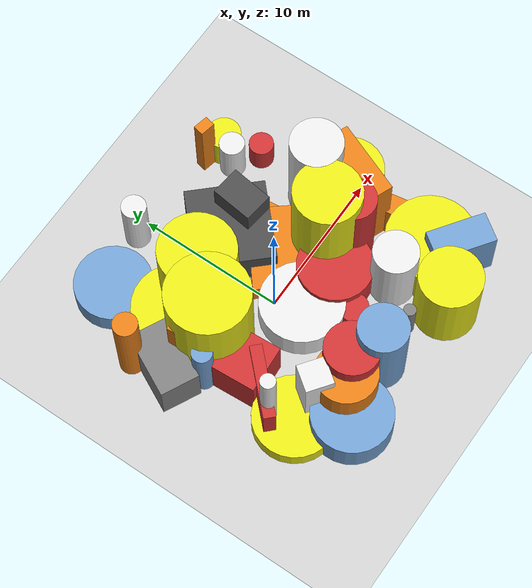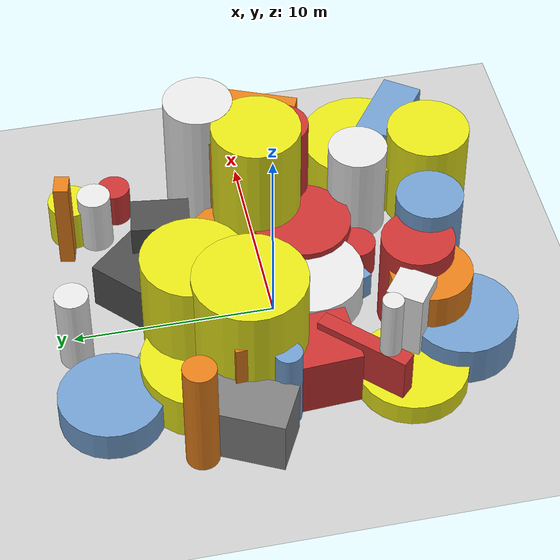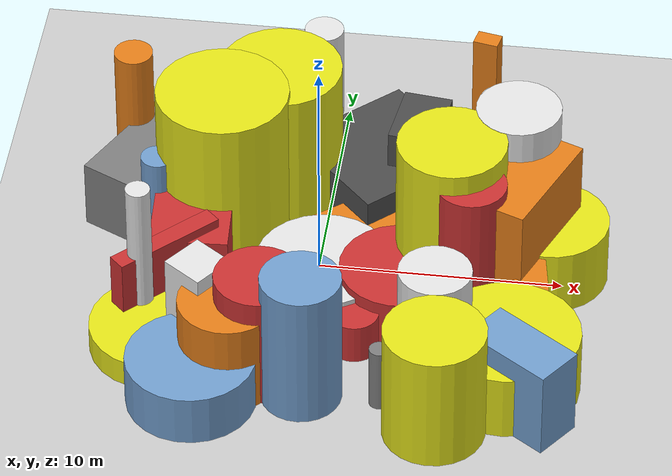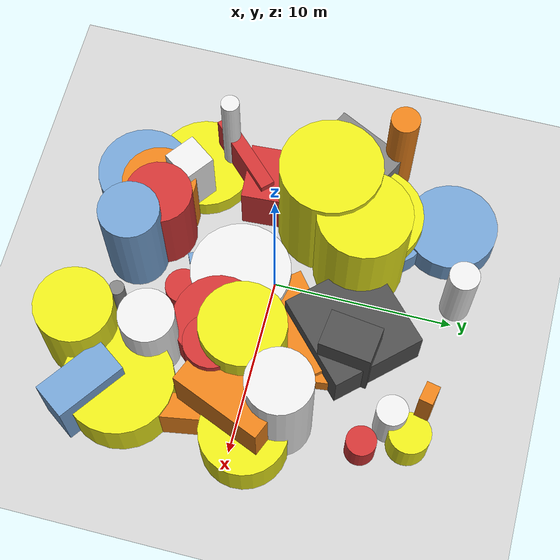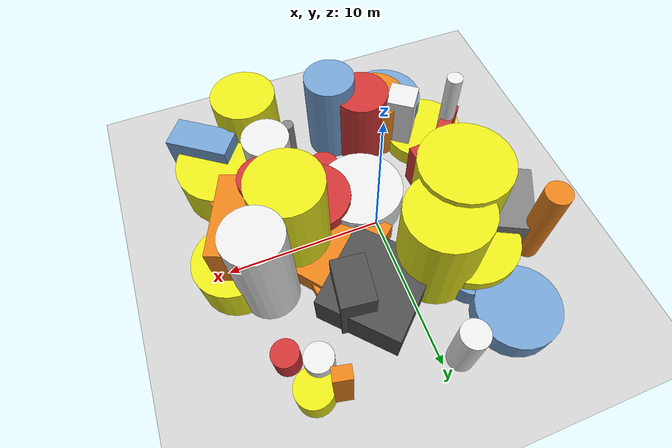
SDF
<?xml version='1.0'?>
<sdf version='1.6'>
  <world name='default'>
    <!-- Sun light -->
    <light name='sun' type='directional'>
      <cast_shadows>1</cast_shadows>
      <pose>0 0 10 0 0 0</pose>
      <diffuse>0.8 0.8 0.8 1</diffuse>
      <specular>0.2 0.2 0.2 1</specular>
      <attenuation>
        <range>1000</range>
        <constant>0.9</constant>
        <linear>0.01</linear>
        <quadratic>0.001</quadratic>
      </attenuation>
      <direction>-0.5 0.1 -0.9</direction>
    </light>

    <!-- Ground plane -->
    <model name='ground_plane'>
      <static>1</static>
      <link name='link'>
        <collision name='collision'>
          <geometry>
            <plane>
              <normal>0 0 1</normal>
              <size>100 100</size>
            </plane>
          </geometry>
          <surface>
            <contact>
              <collide_bitmask>65535</collide_bitmask>
              <ode/>
            </contact>
            <friction>
              <ode>
                <mu>100</mu>
                <mu2>50</mu2>
              </ode>
              <torsional><ode/></torsional>
            </friction>
            <bounce/>
          </surface>
          <max_contacts>10</max_contacts>
        </collision>
        <visual name='visual'>
          <cast_shadows>0</cast_shadows>
          <geometry>
            <plane>
              <normal>0 0 1</normal>
              <size>100 100</size>
            </plane>
          </geometry>
          <material>
            <script>
              <uri>file://media/materials/scripts/gazebo.material</uri>
              <n>Gazebo/Grey</n>
            </script>
          </material>
        </visual>
      </link>
    </model>

    <!-- Environment -->
    <magnetic_field>6e-06 2.3e-05 -4.2e-05</magnetic_field>
    <atmosphere type='adiabatic'/>
    <physics name='default_physics' default='0' type='ode'>
      <gravity>0 0 -9.8</gravity>
      <max_step_size>0.004</max_step_size>
      <real_time_factor>1</real_time_factor>
      <real_time_update_rate>250</real_time_update_rate>
    </physics>
    <scene>
      <ambient>0.4 0.4 0.4 1</ambient>
      <background>0.7 0.7 0.7 1</background>
      <shadows>1</shadows>
    </scene>
    <wind/>
    <spherical_coordinates>
      <surface_model>EARTH_WGS84</surface_model>
      <latitude_deg>0</latitude_deg>
      <longitude_deg>0</longitude_deg>
      <elevation>0</elevation>
      <heading_deg>0</heading_deg>
    </spherical_coordinates>

    <!-- ============ OBSTACLES (45) ============ -->
    <model name='obs_00'>
      <static>1</static>
      <link name='link'>
        <visual name='visual'>
          <geometry>
            <cylinder>
              <radius>0.8256</radius>
              <length>4.4278</length>
            </cylinder>
          </geometry>
          <material>
            <script>
              <n>Gazebo/White</n>
              <uri>file://media/materials/scripts/gazebo.material</uri>
            </script>
            <ambient>0.9 0.9 0.9 1</ambient>
          </material>
        </visual>
        <collision name='collision'>
          <geometry>
            <cylinder>
              <radius>0.8256</radius>
              <length>4.4278</length>
            </cylinder>
          </geometry>
          <max_contacts>10</max_contacts>
          <surface>
            <contact><ode/></contact>
            <bounce/>
            <friction>
              <ode><mu>1</mu><mu2>1</mu2></ode>
              <torsional><ode/></torsional>
            </friction>
          </surface>
        </collision>
      </link>
      <pose>-1.1108 9.9749 2.2139 0 0 0.9129</pose>
    </model>

    <model name='obs_01'>
      <static>1</static>
      <link name='link'>
        <visual name='visual'>
          <geometry>
            <cylinder>
              <radius>2.9618</radius>
              <length>2.9205</length>
            </cylinder>
          </geometry>
          <material>
            <script>
              <n>Gazebo/Yellow</n>
              <uri>file://media/materials/scripts/gazebo.material</uri>
            </script>
            <ambient>0.9 0.9 0.1 1</ambient>
          </material>
        </visual>
        <collision name='collision'>
          <geometry>
            <cylinder>
              <radius>2.9618</radius>
              <length>2.9205</length>
            </cylinder>
          </geometry>
          <max_contacts>10</max_contacts>
          <surface>
            <contact><ode/></contact>
            <bounce/>
            <friction>
              <ode><mu>1</mu><mu2>1</mu2></ode>
              <torsional><ode/></torsional>
            </friction>
          </surface>
        </collision>
      </link>
      <pose>8.3626 -6.2777 1.4602 0 0 0.5728</pose>
    </model>

    <model name='obs_02'>
      <static>1</static>
      <link name='link'>
        <visual name='visual'>
          <geometry>
            <box>
              <size>4.9049 3.2110 3.1605</size>
            </box>
          </geometry>
          <material>
            <script>
              <n>Gazebo/Red</n>
              <uri>file://media/materials/scripts/gazebo.material</uri>
            </script>
            <ambient>0.8 0.2 0.2 1</ambient>
          </material>
        </visual>
        <collision name='collision'>
          <geometry>
            <box>
              <size>4.9049 3.2110 3.1605</size>
            </box>
          </geometry>
          <max_contacts>10</max_contacts>
          <surface>
            <contact><ode/></contact>
            <bounce/>
            <friction>
              <ode><mu>1</mu><mu2>1</mu2></ode>
              <torsional><ode/></torsional>
            </friction>
          </surface>
        </collision>
      </link>
      <pose>-5.1143 -0.4385 1.5802 0 0 1.6311</pose>
    </model>

    <model name='obs_03'>
      <static>1</static>
      <link name='link'>
        <visual name='visual'>
          <geometry>
            <box>
              <size>0.7392 1.0438 5.0049</size>
            </box>
          </geometry>
          <material>
            <script>
              <n>Gazebo/Orange</n>
              <uri>file://media/materials/scripts/gazebo.material</uri>
            </script>
            <ambient>0.9 0.5 0.1 1</ambient>
          </material>
        </visual>
        <collision name='collision'>
          <geometry>
            <box>
              <size>0.7392 1.0438 5.0049</size>
            </box>
          </geometry>
          <max_contacts>10</max_contacts>
          <surface>
            <contact><ode/></contact>
            <bounce/>
            <friction>
              <ode><mu>1</mu><mu2>1</mu2></ode>
              <torsional><ode/></torsional>
            </friction>
          </surface>
        </collision>
      </link>
      <pose>5.8440 9.4691 2.5024 0 0 1.3626</pose>
    </model>

    <model name='obs_04'>
      <static>1</static>
      <link name='link'>
        <visual name='visual'>
          <geometry>
            <cylinder>
              <radius>1.7459</radius>
              <length>7.4081</length>
            </cylinder>
          </geometry>
          <material>
            <script>
              <n>Gazebo/White</n>
              <uri>file://media/materials/scripts/gazebo.material</uri>
            </script>
            <ambient>0.9 0.9 0.9 1</ambient>
          </material>
        </visual>
        <collision name='collision'>
          <geometry>
            <cylinder>
              <radius>1.7459</radius>
              <length>7.4081</length>
            </cylinder>
          </geometry>
          <max_contacts>10</max_contacts>
          <surface>
            <contact><ode/></contact>
            <bounce/>
            <friction>
              <ode><mu>1</mu><mu2>1</mu2></ode>
              <torsional><ode/></torsional>
            </friction>
          </surface>
        </collision>
      </link>
      <pose>7.8511 2.2119 3.7041 0 0 2.7974</pose>
    </model>

    <model name='obs_05'>
      <static>1</static>
      <link name='link'>
        <visual name='visual'>
          <geometry>
            <box>
              <size>4.0283 2.0386 3.9097</size>
            </box>
          </geometry>
          <material>
            <script>
              <n>Gazebo/Blue</n>
              <uri>file://media/materials/scripts/gazebo.material</uri>
            </script>
            <ambient>0.447 0.624 0.812 1</ambient>
          </material>
        </visual>
        <collision name='collision'>
          <geometry>
            <box>
              <size>4.0283 2.0386 3.9097</size>
            </box>
          </geometry>
          <max_contacts>10</max_contacts>
          <surface>
            <contact><ode/></contact>
            <bounce/>
            <friction>
              <ode><mu>1</mu><mu2>1</mu2></ode>
              <torsional><ode/></torsional>
            </friction>
          </surface>
        </collision>
      </link>
      <pose>9.0684 -7.9928 1.9549 0 0 2.5215</pose>
    </model>

    <model name='obs_06'>
      <static>1</static>
      <link name='link'>
        <visual name='visual'>
          <geometry>
            <cylinder>
              <radius>2.7219</radius>
              <length>1.1760</length>
            </cylinder>
          </geometry>
          <material>
            <script>
              <n>Gazebo/Yellow</n>
              <uri>file://media/materials/scripts/gazebo.material</uri>
            </script>
            <ambient>0.9 0.9 0.1 1</ambient>
          </material>
        </visual>
        <collision name='collision'>
          <geometry>
            <cylinder>
              <radius>2.7219</radius>
              <length>1.1760</length>
            </cylinder>
          </geometry>
          <max_contacts>10</max_contacts>
          <surface>
            <contact><ode/></contact>
            <bounce/>
            <friction>
              <ode><mu>1</mu><mu2>1</mu2></ode>
              <torsional><ode/></torsional>
            </friction>
          </surface>
        </collision>
      </link>
      <pose>-5.8803 -5.5879 0.5880 0 0 1.8410</pose>
    </model>

    <model name='obs_07'>
      <static>1</static>
      <link name='link'>
        <visual name='visual'>
          <geometry>
            <box>
              <size>1.3466 5.9663 2.7808</size>
            </box>
          </geometry>
          <material>
            <script>
              <n>Gazebo/Orange</n>
              <uri>file://media/materials/scripts/gazebo.material</uri>
            </script>
            <ambient>0.9 0.5 0.1 1</ambient>
          </material>
        </visual>
        <collision name='collision'>
          <geometry>
            <box>
              <size>1.3466 5.9663 2.7808</size>
            </box>
          </geometry>
          <max_contacts>10</max_contacts>
          <surface>
            <contact><ode/></contact>
            <bounce/>
            <friction>
              <ode><mu>1</mu><mu2>1</mu2></ode>
              <torsional><ode/></torsional>
            </friction>
          </surface>
        </collision>
      </link>
      <pose>8.8363 -2.2055 1.3904 0 0 0.1645</pose>
    </model>

    <model name='obs_08'>
      <static>1</static>
      <link name='link'>
        <visual name='visual'>
          <geometry>
            <box>
              <size>1.8422 1.8539 4.8434</size>
            </box>
          </geometry>
          <material>
            <script>
              <n>Gazebo/White</n>
              <uri>file://media/materials/scripts/gazebo.material</uri>
            </script>
            <ambient>0.9 0.9 0.9 1</ambient>
          </material>
        </visual>
        <collision name='collision'>
          <geometry>
            <box>
              <size>1.8422 1.8539 4.8434</size>
            </box>
          </geometry>
          <max_contacts>10</max_contacts>
          <surface>
            <contact><ode/></contact>
            <bounce/>
            <friction>
              <ode><mu>1</mu><mu2>1</mu2></ode>
              <torsional><ode/></torsional>
            </friction>
          </surface>
        </collision>
      </link>
      <pose>-4.0855 -5.8330 2.4217 0 0 0.9356</pose>
    </model>

    <model name='obs_09'>
      <static>1</static>
      <link name='link'>
        <visual name='visual'>
          <geometry>
            <box>
              <size>2.0320 1.4455 1.4614</size>
            </box>
          </geometry>
          <material>
            <script>
              <n>Gazebo/Blue</n>
              <uri>file://media/materials/scripts/gazebo.material</uri>
            </script>
            <ambient>0.447 0.624 0.812 1</ambient>
          </material>
        </visual>
        <collision name='collision'>
          <geometry>
            <box>
              <size>2.0320 1.4455 1.4614</size>
            </box>
          </geometry>
          <max_contacts>10</max_contacts>
          <surface>
            <contact><ode/></contact>
            <bounce/>
            <friction>
              <ode><mu>1</mu><mu2>1</mu2></ode>
              <torsional><ode/></torsional>
            </friction>
          </surface>
        </collision>
      </link>
      <pose>0.1535 -3.7407 0.7307 0 0 2.0418</pose>
    </model>

    <model name='obs_10'>
      <static>1</static>
      <link name='link'>
        <visual name='visual'>
          <geometry>
            <cylinder>
              <radius>2.5497</radius>
              <length>1.6457</length>
            </cylinder>
          </geometry>
          <material>
            <script>
              <n>Gazebo/Blue</n>
              <uri>file://media/materials/scripts/gazebo.material</uri>
            </script>
            <ambient>0.447 0.624 0.812 1</ambient>
          </material>
        </visual>
        <collision name='collision'>
          <geometry>
            <cylinder>
              <radius>2.5497</radius>
              <length>1.6457</length>
            </cylinder>
          </geometry>
          <max_contacts>10</max_contacts>
          <surface>
            <contact><ode/></contact>
            <bounce/>
            <friction>
              <ode><mu>1</mu><mu2>1</mu2></ode>
              <torsional><ode/></torsional>
            </friction>
          </surface>
        </collision>
      </link>
      <pose>-5.1561 8.8393 0.8228 0 0 0.2892</pose>
    </model>

    <model name='obs_11'>
      <static>1</static>
      <link name='link'>
        <visual name='visual'>
          <geometry>
            <box>
              <size>4.9857 3.0220 1.1138</size>
            </box>
          </geometry>
          <material>
            <script>
              <n>Gazebo/Orange</n>
              <uri>file://media/materials/scripts/gazebo.material</uri>
            </script>
            <ambient>0.9 0.5 0.1 1</ambient>
          </material>
        </visual>
        <collision name='collision'>
          <geometry>
            <box>
              <size>4.9857 3.0220 1.1138</size>
            </box>
          </geometry>
          <max_contacts>10</max_contacts>
          <surface>
            <contact><ode/></contact>
            <bounce/>
            <friction>
              <ode><mu>1</mu><mu2>1</mu2></ode>
              <torsional><ode/></torsional>
            </friction>
          </surface>
        </collision>
      </link>
      <pose>4.0776 2.0271 0.5569 0 0 1.6892</pose>
    </model>

    <model name='obs_12'>
      <static>1</static>
      <link name='link'>
        <visual name='visual'>
          <geometry>
            <cylinder>
              <radius>1.4547</radius>
              <length>6.4703</length>
            </cylinder>
          </geometry>
          <material>
            <script>
              <n>Gazebo/Red</n>
              <uri>file://media/materials/scripts/gazebo.material</uri>
            </script>
            <ambient>0.8 0.2 0.2 1</ambient>
          </material>
        </visual>
        <collision name='collision'>
          <geometry>
            <cylinder>
              <radius>1.4547</radius>
              <length>6.4703</length>
            </cylinder>
          </geometry>
          <max_contacts>10</max_contacts>
          <surface>
            <contact><ode/></contact>
            <bounce/>
            <friction>
              <ode><mu>1</mu><mu2>1</mu2></ode>
              <torsional><ode/></torsional>
            </friction>
          </surface>
        </collision>
      </link>
      <pose>6.3475 -1.6383 3.2352 0 0 1.9381</pose>
    </model>

    <model name='obs_13'>
      <static>1</static>
      <link name='link'>
        <visual name='visual'>
          <geometry>
            <cylinder>
              <radius>2.7794</radius>
              <length>1.9856</length>
            </cylinder>
          </geometry>
          <material>
            <script>
              <n>Gazebo/White</n>
              <uri>file://media/materials/scripts/gazebo.material</uri>
            </script>
            <ambient>0.9 0.9 0.9 1</ambient>
          </material>
        </visual>
        <collision name='collision'>
          <geometry>
            <cylinder>
              <radius>2.7794</radius>
              <length>1.9856</length>
            </cylinder>
          </geometry>
          <max_contacts>10</max_contacts>
          <surface>
            <contact><ode/></contact>
            <bounce/>
            <friction>
              <ode><mu>1</mu><mu2>1</mu2></ode>
              <torsional><ode/></torsional>
            </friction>
          </surface>
        </collision>
      </link>
      <pose>0.4158 -1.8308 0.9928 0 0 0.1625</pose>
    </model>

    <model name='obs_14'>
      <static>1</static>
      <link name='link'>
        <visual name='visual'>
          <geometry>
            <cylinder>
              <radius>0.8182</radius>
              <length>1.9469</length>
            </cylinder>
          </geometry>
          <material>
            <script>
              <n>Gazebo/Red</n>
              <uri>file://media/materials/scripts/gazebo.material</uri>
            </script>
            <ambient>0.8 0.2 0.2 1</ambient>
          </material>
        </visual>
        <collision name='collision'>
          <geometry>
            <cylinder>
              <radius>0.8182</radius>
              <length>1.9469</length>
            </cylinder>
          </geometry>
          <max_contacts>10</max_contacts>
          <surface>
            <contact><ode/></contact>
            <bounce/>
            <friction>
              <ode><mu>1</mu><mu2>1</mu2></ode>
              <torsional><ode/></torsional>
            </friction>
          </surface>
        </collision>
      </link>
      <pose>8.1848 6.6910 0.9735 0 0 0.4064</pose>
    </model>

    <model name='obs_15'>
      <static>1</static>
      <link name='link'>
        <visual name='visual'>
          <geometry>
            <cylinder>
              <radius>2.0815</radius>
              <length>5.2868</length>
            </cylinder>
          </geometry>
          <material>
            <script>
              <n>Gazebo/Yellow</n>
              <uri>file://media/materials/scripts/gazebo.material</uri>
            </script>
            <ambient>0.9 0.9 0.1 1</ambient>
          </material>
        </visual>
        <collision name='collision'>
          <geometry>
            <cylinder>
              <radius>2.0815</radius>
              <length>5.2868</length>
            </cylinder>
          </geometry>
          <max_contacts>10</max_contacts>
          <surface>
            <contact><ode/></contact>
            <bounce/>
            <friction>
              <ode><mu>1</mu><mu2>1</mu2></ode>
              <torsional><ode/></torsional>
            </friction>
          </surface>
        </collision>
      </link>
      <pose>5.7720 -9.2007 2.6434 0 0 1.5433</pose>
    </model>

    <model name='obs_16'>
      <static>1</static>
      <link name='link'>
        <visual name='visual'>
          <geometry>
            <box>
              <size>2.0285 2.8913 4.2065</size>
            </box>
          </geometry>
          <material>
            <script>
              <n>Gazebo/DarkGrey</n>
              <uri>file://media/materials/scripts/gazebo.material</uri>
            </script>
            <ambient>0.3 0.3 0.3 1</ambient>
          </material>
        </visual>
        <collision name='collision'>
          <geometry>
            <box>
              <size>2.0285 2.8913 4.2065</size>
            </box>
          </geometry>
          <max_contacts>10</max_contacts>
          <surface>
            <contact><ode/></contact>
            <bounce/>
            <friction>
              <ode><mu>1</mu><mu2>1</mu2></ode>
              <torsional><ode/></torsional>
            </friction>
          </surface>
        </collision>
      </link>
      <pose>3.5491 4.9525 2.1033 0 0 3.0132</pose>
    </model>

    <model name='obs_17'>
      <static>1</static>
      <link name='link'>
        <visual name='visual'>
          <geometry>
            <cylinder>
              <radius>1.8011</radius>
              <length>5.1877</length>
            </cylinder>
          </geometry>
          <material>
            <script>
              <n>Gazebo/Red</n>
              <uri>file://media/materials/scripts/gazebo.material</uri>
            </script>
            <ambient>0.8 0.2 0.2 1</ambient>
          </material>
        </visual>
        <collision name='collision'>
          <geometry>
            <cylinder>
              <radius>1.8011</radius>
              <length>5.1877</length>
            </cylinder>
          </geometry>
          <max_contacts>10</max_contacts>
          <surface>
            <contact><ode/></contact>
            <bounce/>
            <friction>
              <ode><mu>1</mu><mu2>1</mu2></ode>
              <torsional><ode/></torsional>
            </friction>
          </surface>
        </collision>
      </link>
      <pose>-1.5206 -6.7843 2.5939 0 0 0.8734</pose>
    </model>

    <model name='obs_18'>
      <static>1</static>
      <link name='link'>
        <visual name='visual'>
          <geometry>
            <box>
              <size>5.7447 5.8926 1.4949</size>
            </box>
          </geometry>
          <material>
            <script>
              <n>Gazebo/Orange</n>
              <uri>file://media/materials/scripts/gazebo.material</uri>
            </script>
            <ambient>0.9 0.5 0.1 1</ambient>
          </material>
        </visual>
        <collision name='collision'>
          <geometry>
            <box>
              <size>5.7447 5.8926 1.4949</size>
            </box>
          </geometry>
          <max_contacts>10</max_contacts>
          <surface>
            <contact><ode/></contact>
            <bounce/>
            <friction>
              <ode><mu>1</mu><mu2>1</mu2></ode>
              <torsional><ode/></torsional>
            </friction>
          </surface>
        </collision>
      </link>
      <pose>3.5684 0.8370 0.7475 0 0 0.6821</pose>
    </model>

    <model name='obs_19'>
      <static>1</static>
      <link name='link'>
        <visual name='visual'>
          <geometry>
            <cylinder>
              <radius>2.3387</radius>
              <length>1.5107</length>
            </cylinder>
          </geometry>
          <material>
            <script>
              <n>Gazebo/Blue</n>
              <uri>file://media/materials/scripts/gazebo.material</uri>
            </script>
            <ambient>0.447 0.624 0.812 1</ambient>
          </material>
        </visual>
        <collision name='collision'>
          <geometry>
            <cylinder>
              <radius>2.3387</radius>
              <length>1.5107</length>
            </cylinder>
          </geometry>
          <max_contacts>10</max_contacts>
          <surface>
            <contact><ode/></contact>
            <bounce/>
            <friction>
              <ode><mu>1</mu><mu2>1</mu2></ode>
              <torsional><ode/></torsional>
            </friction>
          </surface>
        </collision>
      </link>
      <pose>-4.3327 5.3359 0.7553 0 0 0.6112</pose>
    </model>

    <model name='obs_20'>
      <static>1</static>
      <link name='link'>
        <visual name='visual'>
          <geometry>
            <cylinder>
              <radius>0.5014</radius>
              <length>6.0560</length>
            </cylinder>
          </geometry>
          <material>
            <script>
              <n>Gazebo/White</n>
              <uri>file://media/materials/scripts/gazebo.material</uri>
            </script>
            <ambient>0.9 0.9 0.9 1</ambient>
          </material>
        </visual>
        <collision name='collision'>
          <geometry>
            <cylinder>
              <radius>0.5014</radius>
              <length>6.0560</length>
            </cylinder>
          </geometry>
          <max_contacts>10</max_contacts>
          <surface>
            <contact><ode/></contact>
            <bounce/>
            <friction>
              <ode><mu>1</mu><mu2>1</mu2></ode>
              <torsional><ode/></torsional>
            </friction>
          </surface>
        </collision>
      </link>
      <pose>-3.2851 0.3088 3.0280 0 0 2.2320</pose>
    </model>

    <model name='obs_21'>
      <static>1</static>
      <link name='link'>
        <visual name='visual'>
          <geometry>
            <cylinder>
              <radius>0.4173</radius>
              <length>2.8620</length>
            </cylinder>
          </geometry>
          <material>
            <script>
              <n>Gazebo/Grey</n>
              <uri>file://media/materials/scripts/gazebo.material</uri>
            </script>
            <ambient>0.5 0.5 0.5 1</ambient>
          </material>
        </visual>
        <collision name='collision'>
          <geometry>
            <cylinder>
              <radius>0.4173</radius>
              <length>2.8620</length>
            </cylinder>
          </geometry>
          <max_contacts>10</max_contacts>
          <surface>
            <contact><ode/></contact>
            <bounce/>
            <friction>
              <ode><mu>1</mu><mu2>1</mu2></ode>
              <torsional><ode/></torsional>
            </friction>
          </surface>
        </collision>
      </link>
      <pose>3.4439 -7.8678 1.4310 0 0 2.6877</pose>
    </model>

    <model name='obs_22'>
      <static>1</static>
      <link name='link'>
        <visual name='visual'>
          <geometry>
            <cylinder>
              <radius>1.6425</radius>
              <length>6.1531</length>
            </cylinder>
          </geometry>
          <material>
            <script>
              <n>Gazebo/Blue</n>
              <uri>file://media/materials/scripts/gazebo.material</uri>
            </script>
            <ambient>0.447 0.624 0.812 1</ambient>
          </material>
        </visual>
        <collision name='collision'>
          <geometry>
            <cylinder>
              <radius>1.6425</radius>
              <length>6.1531</length>
            </cylinder>
          </geometry>
          <max_contacts>10</max_contacts>
          <surface>
            <contact><ode/></contact>
            <bounce/>
            <friction>
              <ode><mu>1</mu><mu2>1</mu2></ode>
              <torsional><ode/></torsional>
            </friction>
          </surface>
        </collision>
      </link>
      <pose>0.3021 -7.7963 3.0766 0 0 1.8754</pose>
    </model>

    <model name='obs_23'>
      <static>1</static>
      <link name='link'>
        <visual name='visual'>
          <geometry>
            <cylinder>
              <radius>2.9574</radius>
              <length>2.3677</length>
            </cylinder>
          </geometry>
          <material>
            <script>
              <n>Gazebo/Yellow</n>
              <uri>file://media/materials/scripts/gazebo.material</uri>
            </script>
            <ambient>0.9 0.9 0.1 1</ambient>
          </material>
        </visual>
        <collision name='collision'>
          <geometry>
            <cylinder>
              <radius>2.9574</radius>
              <length>2.3677</length>
            </cylinder>
          </geometry>
          <max_contacts>10</max_contacts>
          <surface>
            <contact><ode/></contact>
            <bounce/>
            <friction>
              <ode><mu>1</mu><mu2>1</mu2></ode>
              <torsional><ode/></torsional>
            </friction>
          </surface>
        </collision>
      </link>
      <pose>-4.3921 4.3283 1.1839 0 0 0.7069</pose>
    </model>

    <model name='obs_24'>
      <static>1</static>
      <link name='link'>
        <visual name='visual'>
          <geometry>
            <cylinder>
              <radius>2.7445</radius>
              <length>7.2384</length>
            </cylinder>
          </geometry>
          <material>
            <script>
              <n>Gazebo/Yellow</n>
              <uri>file://media/materials/scripts/gazebo.material</uri>
            </script>
            <ambient>0.9 0.9 0.1 1</ambient>
          </material>
        </visual>
        <collision name='collision'>
          <geometry>
            <cylinder>
              <radius>2.7445</radius>
              <length>7.2384</length>
            </cylinder>
          </geometry>
          <max_contacts>10</max_contacts>
          <surface>
            <contact><ode/></contact>
            <bounce/>
            <friction>
              <ode><mu>1</mu><mu2>1</mu2></ode>
              <torsional><ode/></torsional>
            </friction>
          </surface>
        </collision>
      </link>
      <pose>-4.2159 1.9471 3.6192 0 0 1.1730</pose>
    </model>

    <model name='obs_25'>
      <static>1</static>
      <link name='link'>
        <visual name='visual'>
          <geometry>
            <cylinder>
              <radius>1.0043</radius>
              <length>1.7655</length>
            </cylinder>
          </geometry>
          <material>
            <script>
              <n>Gazebo/Red</n>
              <uri>file://media/materials/scripts/gazebo.material</uri>
            </script>
            <ambient>0.8 0.2 0.2 1</ambient>
          </material>
        </visual>
        <collision name='collision'>
          <geometry>
            <cylinder>
              <radius>1.0043</radius>
              <length>1.7655</length>
            </cylinder>
          </geometry>
          <max_contacts>10</max_contacts>
          <surface>
            <contact><ode/></contact>
            <bounce/>
            <friction>
              <ode><mu>1</mu><mu2>1</mu2></ode>
              <torsional><ode/></torsional>
            </friction>
          </surface>
        </collision>
      </link>
      <pose>2.0258 -4.6439 0.8828 0 0 1.4392</pose>
    </model>

    <model name='obs_26'>
      <static>1</static>
      <link name='link'>
        <visual name='visual'>
          <geometry>
            <cylinder>
              <radius>2.2441</radius>
              <length>7.3925</length>
            </cylinder>
          </geometry>
          <material>
            <script>
              <n>Gazebo/Yellow</n>
              <uri>file://media/materials/scripts/gazebo.material</uri>
            </script>
            <ambient>0.9 0.9 0.1 1</ambient>
          </material>
        </visual>
        <collision name='collision'>
          <geometry>
            <cylinder>
              <radius>2.2441</radius>
              <length>7.3925</length>
            </cylinder>
          </geometry>
          <max_contacts>10</max_contacts>
          <surface>
            <contact><ode/></contact>
            <bounce/>
            <friction>
              <ode><mu>1</mu><mu2>1</mu2></ode>
              <torsional><ode/></torsional>
            </friction>
          </surface>
        </collision>
      </link>
      <pose>5.4175 -0.2623 3.6963 0 0 1.9704</pose>
    </model>

    <model name='obs_27'>
      <static>1</static>
      <link name='link'>
        <visual name='visual'>
          <geometry>
            <box>
              <size>0.8014 4.8207 3.5695</size>
            </box>
          </geometry>
          <material>
            <script>
              <n>Gazebo/Red</n>
              <uri>file://media/materials/scripts/gazebo.material</uri>
            </script>
            <ambient>0.8 0.2 0.2 1</ambient>
          </material>
        </visual>
        <collision name='collision'>
          <geometry>
            <box>
              <size>0.8014 4.8207 3.5695</size>
            </box>
          </geometry>
          <max_contacts>10</max_contacts>
          <surface>
            <contact><ode/></contact>
            <bounce/>
            <friction>
              <ode><mu>1</mu><mu2>1</mu2></ode>
              <torsional><ode/></torsional>
            </friction>
          </surface>
        </collision>
      </link>
      <pose>-5.8523 -3.1821 1.7847 0 0 2.3571</pose>
    </model>

    <model name='obs_28'>
      <static>1</static>
      <link name='link'>
        <visual name='visual'>
          <geometry>
            <cylinder>
              <radius>2.5235</radius>
              <length>6.8858</length>
            </cylinder>
          </geometry>
          <material>
            <script>
              <n>Gazebo/Yellow</n>
              <uri>file://media/materials/scripts/gazebo.material</uri>
            </script>
            <ambient>0.9 0.9 0.1 1</ambient>
          </material>
        </visual>
        <collision name='collision'>
          <geometry>
            <cylinder>
              <radius>2.5235</radius>
              <length>6.8858</length>
            </cylinder>
          </geometry>
          <max_contacts>10</max_contacts>
          <surface>
            <contact><ode/></contact>
            <bounce/>
            <friction>
              <ode><mu>1</mu><mu2>1</mu2></ode>
              <torsional><ode/></torsional>
            </friction>
          </surface>
        </collision>
      </link>
      <pose>-2.1265 4.2305 3.4429 0 0 0.4207</pose>
    </model>

    <model name='obs_29'>
      <static>1</static>
      <link name='link'>
        <visual name='visual'>
          <geometry>
            <box>
              <size>5.2874 5.4358 2.5967</size>
            </box>
          </geometry>
          <material>
            <script>
              <n>Gazebo/DarkGrey</n>
              <uri>file://media/materials/scripts/gazebo.material</uri>
            </script>
            <ambient>0.3 0.3 0.3 1</ambient>
          </material>
        </visual>
        <collision name='collision'>
          <geometry>
            <box>
              <size>5.2874 5.4358 2.5967</size>
            </box>
          </geometry>
          <max_contacts>10</max_contacts>
          <surface>
            <contact><ode/></contact>
            <bounce/>
            <friction>
              <ode><mu>1</mu><mu2>1</mu2></ode>
              <torsional><ode/></torsional>
            </friction>
          </surface>
        </collision>
      </link>
      <pose>2.0402 4.8304 1.2983 0 0 2.3227</pose>
    </model>

    <model name='obs_30'>
      <static>1</static>
      <link name='link'>
        <visual name='visual'>
          <geometry>
            <box>
              <size>1.3048 1.0602 5.8016</size>
            </box>
          </geometry>
          <material>
            <script>
              <n>Gazebo/DarkGrey</n>
              <uri>file://media/materials/scripts/gazebo.material</uri>
            </script>
            <ambient>0.3 0.3 0.3 1</ambient>
          </material>
        </visual>
        <collision name='collision'>
          <geometry>
            <box>
              <size>1.3048 1.0602 5.8016</size>
            </box>
          </geometry>
          <max_contacts>10</max_contacts>
          <surface>
            <contact><ode/></contact>
            <bounce/>
            <friction>
              <ode><mu>1</mu><mu2>1</mu2></ode>
              <torsional><ode/></torsional>
            </friction>
          </surface>
        </collision>
      </link>
      <pose>-2.3004 2.7882 2.9008 0 0 1.6932</pose>
    </model>

    <model name='obs_31'>
      <static>1</static>
      <link name='link'>
        <visual name='visual'>
          <geometry>
            <cylinder>
              <radius>2.4917</radius>
              <length>2.3262</length>
            </cylinder>
          </geometry>
          <material>
            <script>
              <n>Gazebo/Red</n>
              <uri>file://media/materials/scripts/gazebo.material</uri>
            </script>
            <ambient>0.8 0.2 0.2 1</ambient>
          </material>
        </visual>
        <collision name='collision'>
          <geometry>
            <cylinder>
              <radius>2.4917</radius>
              <length>2.3262</length>
            </cylinder>
          </geometry>
          <max_contacts>10</max_contacts>
          <surface>
            <contact><ode/></contact>
            <bounce/>
            <friction>
              <ode><mu>1</mu><mu2>1</mu2></ode>
              <torsional><ode/></torsional>
            </friction>
          </surface>
        </collision>
      </link>
      <pose>3.5940 -2.2008 1.1631 0 0 1.4986</pose>
    </model>

    <model name='obs_32'>
      <static>1</static>
      <link name='link'>
        <visual name='visual'>
          <geometry>
            <cylinder>
              <radius>2.6361</radius>
              <length>2.2326</length>
            </cylinder>
          </geometry>
          <material>
            <script>
              <n>Gazebo/Blue</n>
              <uri>file://media/materials/scripts/gazebo.material</uri>
            </script>
            <ambient>0.447 0.624 0.812 1</ambient>
          </material>
        </visual>
        <collision name='collision'>
          <geometry>
            <cylinder>
              <radius>2.6361</radius>
              <length>2.2326</length>
            </cylinder>
          </geometry>
          <max_contacts>10</max_contacts>
          <surface>
            <contact><ode/></contact>
            <bounce/>
            <friction>
              <ode><mu>1</mu><mu2>1</mu2></ode>
              <torsional><ode/></torsional>
            </friction>
          </surface>
        </collision>
      </link>
      <pose>-4.0142 -8.5658 1.1163 0 0 0.9599</pose>
    </model>

    <model name='obs_33'>
      <static>1</static>
      <link name='link'>
        <visual name='visual'>
          <geometry>
            <box>
              <size>2.6254 4.4129 3.0400</size>
            </box>
          </geometry>
          <material>
            <script>
              <n>Gazebo/Grey</n>
              <uri>file://media/materials/scripts/gazebo.material</uri>
            </script>
            <ambient>0.5 0.5 0.5 1</ambient>
          </material>
        </visual>
        <collision name='collision'>
          <geometry>
            <box>
              <size>2.6254 4.4129 3.0400</size>
            </box>
          </geometry>
          <max_contacts>10</max_contacts>
          <surface>
            <contact><ode/></contact>
            <bounce/>
            <friction>
              <ode><mu>1</mu><mu2>1</mu2></ode>
              <torsional><ode/></torsional>
            </friction>
          </surface>
        </collision>
      </link>
      <pose>-7.7929 2.8793 1.5200 0 0 2.6752</pose>
    </model>

    <model name='obs_34'>
      <static>1</static>
      <link name='link'>
        <visual name='visual'>
          <geometry>
            <cylinder>
              <radius>1.4944</radius>
              <length>5.0887</length>
            </cylinder>
          </geometry>
          <material>
            <script>
              <n>Gazebo/White</n>
              <uri>file://media/materials/scripts/gazebo.material</uri>
            </script>
            <ambient>0.9 0.9 0.9 1</ambient>
          </material>
        </visual>
        <collision name='collision'>
          <geometry>
            <cylinder>
              <radius>1.4944</radius>
              <length>5.0887</length>
            </cylinder>
          </geometry>
          <max_contacts>10</max_contacts>
          <surface>
            <contact><ode/></contact>
            <bounce/>
            <friction>
              <ode><mu>1</mu><mu2>1</mu2></ode>
              <torsional><ode/></torsional>
            </friction>
          </surface>
        </collision>
      </link>
      <pose>5.3557 -5.4501 2.5443 0 0 1.4188</pose>
    </model>

    <model name='obs_35'>
      <static>1</static>
      <link name='link'>
        <visual name='visual'>
          <geometry>
            <box>
              <size>4.4408 0.6674 5.2426</size>
            </box>
          </geometry>
          <material>
            <script>
              <n>Gazebo/Orange</n>
              <uri>file://media/materials/scripts/gazebo.material</uri>
            </script>
            <ambient>0.9 0.5 0.1 1</ambient>
          </material>
        </visual>
        <collision name='collision'>
          <geometry>
            <box>
              <size>4.4408 0.6674 5.2426</size>
            </box>
          </geometry>
          <max_contacts>10</max_contacts>
          <surface>
            <contact><ode/></contact>
            <bounce/>
            <friction>
              <ode><mu>1</mu><mu2>1</mu2></ode>
              <torsional><ode/></torsional>
            </friction>
          </surface>
        </collision>
      </link>
      <pose>-4.6494 2.9519 2.6213 0 0 0.0536</pose>
    </model>

    <model name='obs_36'>
      <static>1</static>
      <link name='link'>
        <visual name='visual'>
          <geometry>
            <cylinder>
              <radius>0.8406</radius>
              <length>3.1698</length>
            </cylinder>
          </geometry>
          <material>
            <script>
              <n>Gazebo/White</n>
              <uri>file://media/materials/scripts/gazebo.material</uri>
            </script>
            <ambient>0.9 0.9 0.9 1</ambient>
          </material>
        </visual>
        <collision name='collision'>
          <geometry>
            <cylinder>
              <radius>0.8406</radius>
              <length>3.1698</length>
            </cylinder>
          </geometry>
          <max_contacts>10</max_contacts>
          <surface>
            <contact><ode/></contact>
            <bounce/>
            <friction>
              <ode><mu>1</mu><mu2>1</mu2></ode>
              <torsional><ode/></torsional>
            </friction>
          </surface>
        </collision>
      </link>
      <pose>6.5787 7.8829 1.5849 0 0 1.9187</pose>
    </model>

    <model name='obs_37'>
      <static>1</static>
      <link name='link'>
        <visual name='visual'>
          <geometry>
            <cylinder>
              <radius>1.1250</radius>
              <length>2.3234</length>
            </cylinder>
          </geometry>
          <material>
            <script>
              <n>Gazebo/Yellow</n>
              <uri>file://media/materials/scripts/gazebo.material</uri>
            </script>
            <ambient>0.9 0.9 0.1 1</ambient>
          </material>
        </visual>
        <collision name='collision'>
          <geometry>
            <cylinder>
              <radius>1.1250</radius>
              <length>2.3234</length>
            </cylinder>
          </geometry>
          <max_contacts>10</max_contacts>
          <surface>
            <contact><ode/></contact>
            <bounce/>
            <friction>
              <ode><mu>1</mu><mu2>1</mu2></ode>
              <torsional><ode/></torsional>
            </friction>
          </surface>
        </collision>
      </link>
      <pose>7.2782 9.0368 1.1617 0 0 2.5757</pose>
    </model>

    <model name='obs_38'>
      <static>1</static>
      <link name='link'>
        <visual name='visual'>
          <geometry>
            <cylinder>
              <radius>2.0255</radius>
              <length>4.1516</length>
            </cylinder>
          </geometry>
          <material>
            <script>
              <n>Gazebo/Orange</n>
              <uri>file://media/materials/scripts/gazebo.material</uri>
            </script>
            <ambient>0.9 0.5 0.1 1</ambient>
          </material>
        </visual>
        <collision name='collision'>
          <geometry>
            <cylinder>
              <radius>2.0255</radius>
              <length>4.1516</length>
            </cylinder>
          </geometry>
          <max_contacts>10</max_contacts>
          <surface>
            <contact><ode/></contact>
            <bounce/>
            <friction>
              <ode><mu>1</mu><mu2>1</mu2></ode>
              <torsional><ode/></torsional>
            </friction>
          </surface>
        </collision>
      </link>
      <pose>-2.6971 -7.1815 2.0758 0 0 2.5072</pose>
    </model>

    <model name='obs_39'>
      <static>1</static>
      <link name='link'>
        <visual name='visual'>
          <geometry>
            <cylinder>
              <radius>0.5041</radius>
              <length>6.9203</length>
            </cylinder>
          </geometry>
          <material>
            <script>
              <n>Gazebo/White</n>
              <uri>file://media/materials/scripts/gazebo.material</uri>
            </script>
            <ambient>0.9 0.9 0.9 1</ambient>
          </material>
        </visual>
        <collision name='collision'>
          <geometry>
            <cylinder>
              <radius>0.5041</radius>
              <length>6.9203</length>
            </cylinder>
          </geometry>
          <max_contacts>10</max_contacts>
          <surface>
            <contact><ode/></contact>
            <bounce/>
            <friction>
              <ode><mu>1</mu><mu2>1</mu2></ode>
              <torsional><ode/></torsional>
            </friction>
          </surface>
        </collision>
      </link>
      <pose>-6.7050 -4.1876 3.4602 0 0 0.4396</pose>
    </model>

    <model name='obs_40'>
      <static>1</static>
      <link name='link'>
        <visual name='visual'>
          <geometry>
            <box>
              <size>5.1099 4.1626 5.9901</size>
            </box>
          </geometry>
          <material>
            <script>
              <n>Gazebo/Orange</n>
              <uri>file://media/materials/scripts/gazebo.material</uri>
            </script>
            <ambient>0.9 0.5 0.1 1</ambient>
          </material>
        </visual>
        <collision name='collision'>
          <geometry>
            <box>
              <size>5.1099 4.1626 5.9901</size>
            </box>
          </geometry>
          <max_contacts>10</max_contacts>
          <surface>
            <contact><ode/></contact>
            <bounce/>
            <friction>
              <ode><mu>1</mu><mu2>1</mu2></ode>
              <torsional><ode/></torsional>
            </friction>
          </surface>
        </collision>
      </link>
      <pose>7.6159 0.1329 2.9950 0 0 1.1762</pose>
    </model>

    <model name='obs_41'>
      <static>1</static>
      <link name='link'>
        <visual name='visual'>
          <geometry>
            <cylinder>
              <radius>0.2004</radius>
              <length>4.8989</length>
            </cylinder>
          </geometry>
          <material>
            <script>
              <n>Gazebo/Orange</n>
              <uri>file://media/materials/scripts/gazebo.material</uri>
            </script>
            <ambient>0.9 0.5 0.1 1</ambient>
          </material>
        </visual>
        <collision name='collision'>
          <geometry>
            <cylinder>
              <radius>0.2004</radius>
              <length>4.8989</length>
            </cylinder>
          </geometry>
          <max_contacts>10</max_contacts>
          <surface>
            <contact><ode/></contact>
            <bounce/>
            <friction>
              <ode><mu>1</mu><mu2>1</mu2></ode>
              <torsional><ode/></torsional>
            </friction>
          </surface>
        </collision>
      </link>
      <pose>-1.2975 3.3201 2.4494 0 0 0.1041</pose>
    </model>

    <model name='obs_42'>
      <static>1</static>
      <link name='link'>
        <visual name='visual'>
          <geometry>
            <cylinder>
              <radius>0.8040</radius>
              <length>6.3229</length>
            </cylinder>
          </geometry>
          <material>
            <script>
              <n>Gazebo/Orange</n>
              <uri>file://media/materials/scripts/gazebo.material</uri>
            </script>
            <ambient>0.9 0.5 0.1 1</ambient>
          </material>
        </visual>
        <collision name='collision'>
          <geometry>
            <cylinder>
              <radius>0.8040</radius>
              <length>6.3229</length>
            </cylinder>
          </geometry>
          <max_contacts>10</max_contacts>
          <surface>
            <contact><ode/></contact>
            <bounce/>
            <friction>
              <ode><mu>1</mu><mu2>1</mu2></ode>
              <torsional><ode/></torsional>
            </friction>
          </surface>
        </collision>
      </link>
      <pose>-8.3953 5.0867 3.1615 0 0 1.6285</pose>
    </model>

    <model name='obs_43'>
      <static>1</static>
      <link name='link'>
        <visual name='visual'>
          <geometry>
            <cylinder>
              <radius>0.6807</radius>
              <length>4.5479</length>
            </cylinder>
          </geometry>
          <material>
            <script>
              <n>Gazebo/Blue</n>
              <uri>file://media/materials/scripts/gazebo.material</uri>
            </script>
            <ambient>0.447 0.624 0.812 1</ambient>
          </material>
        </visual>
        <collision name='collision'>
          <geometry>
            <cylinder>
              <radius>0.6807</radius>
              <length>4.5479</length>
            </cylinder>
          </geometry>
          <max_contacts>10</max_contacts>
          <surface>
            <contact><ode/></contact>
            <bounce/>
            <friction>
              <ode><mu>1</mu><mu2>1</mu2></ode>
              <torsional><ode/></torsional>
            </friction>
          </surface>
        </collision>
      </link>
      <pose>-6.7431 0.6863 2.2739 0 0 1.4210</pose>
    </model>

    <model name='obs_44'>
      <static>1</static>
      <link name='link'>
        <visual name='visual'>
          <geometry>
            <cylinder>
              <radius>2.3414</radius>
              <length>2.9088</length>
            </cylinder>
          </geometry>
          <material>
            <script>
              <n>Gazebo/Yellow</n>
              <uri>file://media/materials/scripts/gazebo.material</uri>
            </script>
            <ambient>0.9 0.9 0.1 1</ambient>
          </material>
        </visual>
        <collision name='collision'>
          <geometry>
            <cylinder>
              <radius>2.3414</radius>
              <length>2.9088</length>
            </cylinder>
          </geometry>
          <max_contacts>10</max_contacts>
          <surface>
            <contact><ode/></contact>
            <bounce/>
            <friction>
              <ode><mu>1</mu><mu2>1</mu2></ode>
              <torsional><ode/></torsional>
            </friction>
          </surface>
        </collision>
      </link>
      <pose>9.4519 0.7277 1.4544 0 0 2.2966</pose>
    </model>

    <!-- GUI camera -->
    <gui fullscreen='0'>
      <camera name='user_camera'>
        <pose>-15 0 18 0 0.85 0.15</pose>
        <view_controller>orbit</view_controller>
        <projection_type>perspective</projection_type>
      </camera>
    </gui>
  </world>
</sdf>
